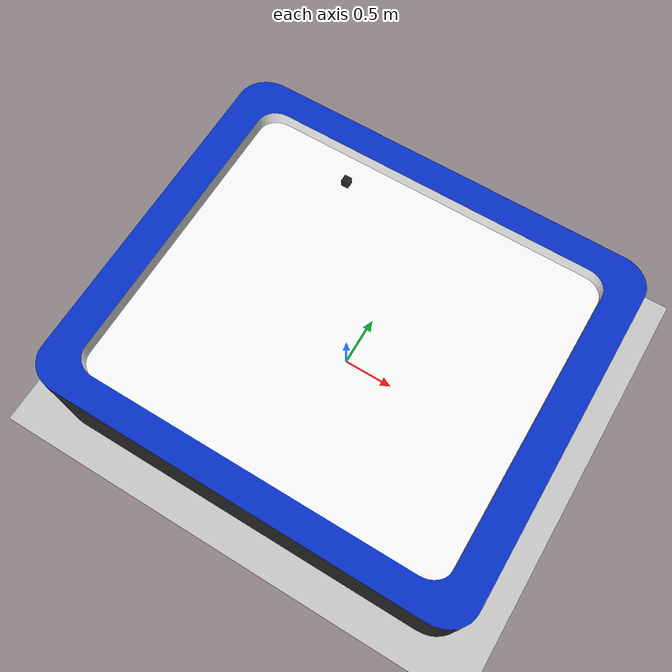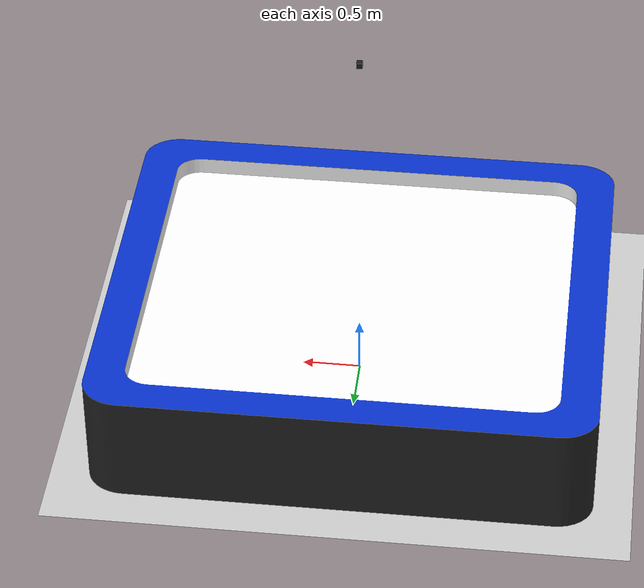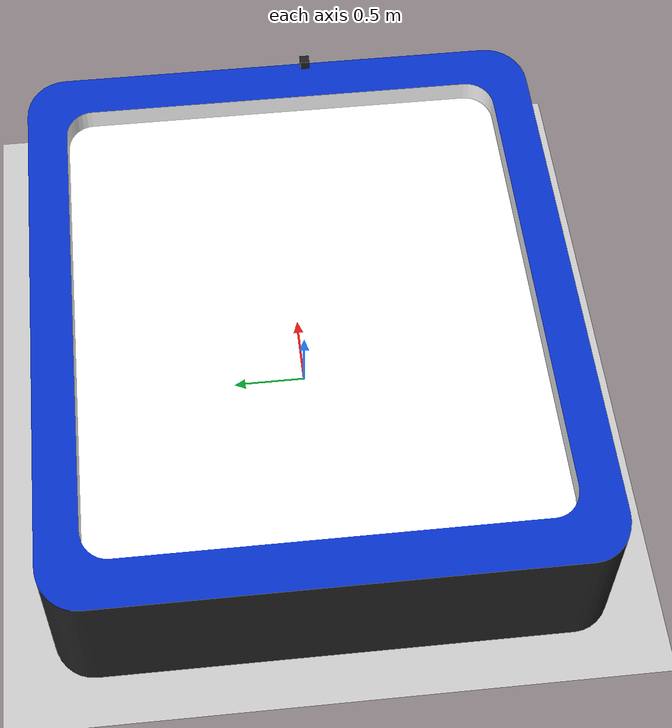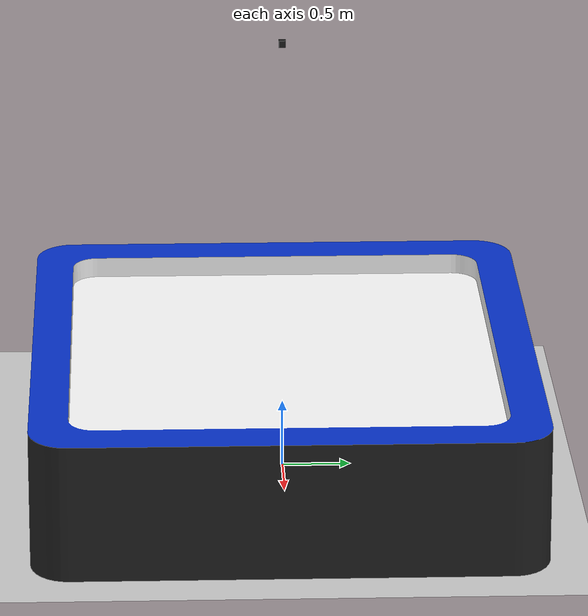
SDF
<?xml version="1.0"?>
<sdf version="1.7">
  <world name="default">

    <include>
      <uri>model://ground_plane</uri>
    </include>

    <include>
      <uri>model://sun</uri>
    </include>

    <scene>
      <shadows>false</shadows>
    </scene>

    <gui fullscreen='0'>
      <camera name='user_camera'>
        <pose frame=''>0.319654 -0.235002 9.29441 0 1.5138 0.009599</pose>
        <view_controller>orbit</view_controller>
        <projection_type>perspective</projection_type>
      </camera>
    </gui>

    <physics type="ode">
      <real_time_update_rate>1000.0</real_time_update_rate>
      <max_step_size>0.001</max_step_size>
      <real_time_factor>1</real_time_factor>
      <ode>
        <solver>
          <type>quick</type>
          <iters>150</iters>
          <precon_iters>0</precon_iters>
          <sor>1.400000</sor>
          <use_dynamic_moi_rescaling>1</use_dynamic_moi_rescaling>
        </solver>
        <constraints>
          <cfm>0.00001</cfm>
          <erp>0.2</erp>
          <contact_max_correcting_vel>2000.000000</contact_max_correcting_vel>
          <contact_surface_layer>0.01000</contact_surface_layer>
        </constraints>
      </ode>
    </physics>

    <model name='robotarium_arena'>
      <static>true</static>
      <include>
        <uri>model://robotarium</uri>
      </include>
    </model>

    <model name='overhead_camera'>
      <static>true</static>
      <include>
        <uri>model://overhead_camera</uri>
      </include>
    </model>

  </world>
</sdf>

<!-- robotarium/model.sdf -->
<sdf version="1.7">
  <model name="robotarium">
    <static>true</static>
    <pose>0 0 0 0 0 0</pose>
    <link name="link">
      <collision name="collision">
        <geometry>
          <mesh>
            <uri>model:///robotarium/meshes/robotarium.dae</uri>
            <scale>1.0 1.0 1.0</scale>
          </mesh>
        </geometry>
      </collision>
      <visual name="visual">
        <geometry>
          <mesh>
            <uri>model://robotarium/meshes/robotarium.dae</uri>
            <scale>1.0 1.0 1.0</scale>
          </mesh>
        </geometry>
      </visual>
    </link>
  </model>
</sdf>

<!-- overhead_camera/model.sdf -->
<sdf version='1.7'>
  <model name='overhead_camera'>
    <link name='camera_link'>
      <visual name='camera_link_visual'>
        <pose>0 0 3.25 -1.5708 1.5708 0</pose>
        <geometry>
          <box>
            <size>0.05 0.05 0.05</size>
          </box>
        </geometry>
        <material>
          <script>
            <name>Gazebo/Black</name>
            <uri>file://media/materials/scripts/gazebo.material</uri>
          </script>
        </material>
      </visual>
      <sensor name='overhead_camera' type='camera'>
        <update_rate>30</update_rate>
        <visualize>true</visualize>
        <camera name='head'>
          <horizontal_fov>1.39626</horizontal_fov>
          <image>
            <width>640</width>
            <height>480</height>
            <format>R8G8B8</format>
          </image>
          <clip>
            <near>0.02</near>
            <far>300</far>
          </clip>
          <noise>
            <type>gaussian</type>
            <mean>0</mean>
            <stddev>0.007</stddev>
          </noise>
        </camera>
        <plugin name='camera_controller' filename='libgazebo_ros_camera.so'>
          <ros>
            <namespace>overhead_camera</namespace>
          </ros>
        </plugin>
        <pose>0 0 3.25 3.14159 1.57079 -1.57079</pose>
      </sensor>
    </link>
  </model>
</sdf>
